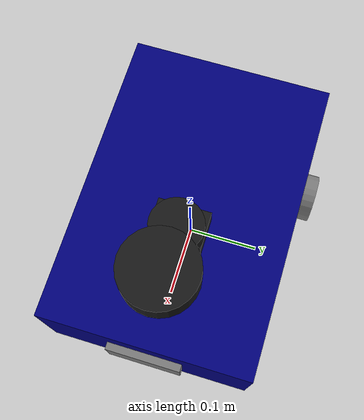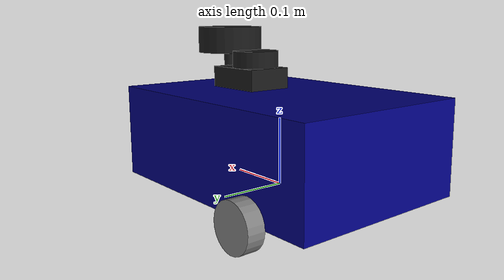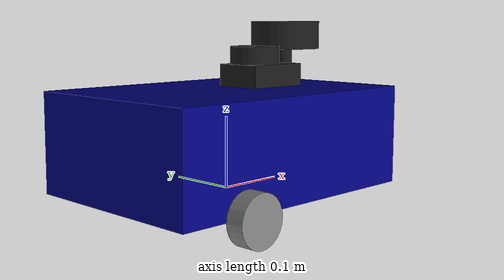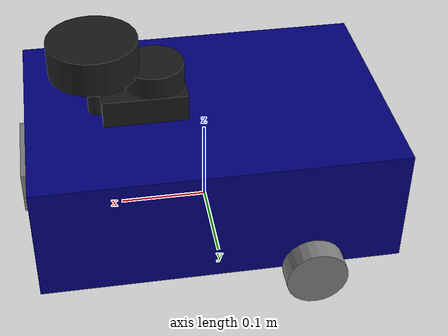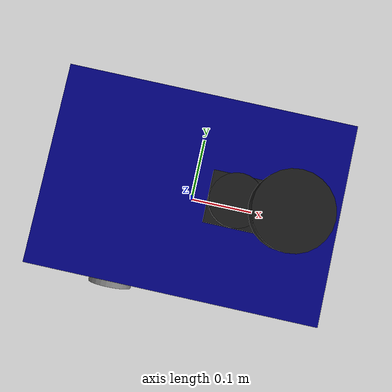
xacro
<?xml version="1.0"?>
<robot name="my_robot" xmlns:xacro="http://www.ros.org/wiki/xacro">

    <xacro:include filename="common_properties.xacro" />
    <xacro:include filename="inertial_macros.xacro"/>
    <xacro:include filename="mobile_base.xacro" />
    <xacro:include filename="ros2_control.xacro"/>
    <xacro:include filename="camera.xacro"/>
    <xacro:include filename="lidar.xacro"/>

</robot>

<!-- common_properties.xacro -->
<!-- still need to indicate xml -->
<robot xmlns:xacro="http://www.ros.org/wiki/xacro"> <!-- omit robot name (allowing us to insert into any robot) -->

    <material name="blue">
        <color rgba="0 0 0.5 1" />
    </material>

    <material name="grey">
        <color rgba="0.5 0.5 0.5 1" />
    </material>

    <material name="black">
        <color rgba="0.1 0.1 0.1 1" />
    </material>

    <xacro:macro name="box_inertia" params="m l w h xyz rpy">
        <inertial>
            <origin xyz="${xyz}" rpy="${rpy}" />
            <mass value="${m}" />
            <inertia ixx="${(m/12) * (h*h + l*l)}" ixy="0" ixz="0"
                        iyy="${(m/12) * (w*w + l*l)}" iyz="0"
                        izz="${(m/12) * (w*w + h*h)}" />
        </inertial>
    </xacro:macro>

    <xacro:macro name="cylinder_inertia" params="m r h xyz rpy">
        <inertial>
            <origin xyz="${xyz}" rpy="${rpy}" />
            <mass value="${m}" />
            <inertia ixx="${(m/12) * (3*r*r + h*h)}" ixy="0" ixz="0"
                        iyy="${(m/12) * (3*r*r + h*h)}" iyz="0"
                        izz="${(m/2) * (r*r)}" />
        </inertial>
    </xacro:macro>

    <xacro:macro name="sphere_inertia" params="m r xyz rpy">
        <inertial>
            <origin xyz="${xyz}" rpy="${rpy}" />
            <mass value="${m}" />
            <inertia ixx="${(2/5) * m * r * r}" ixy="0" ixz="0"
                        iyy="${(2/5) * m * r * r}" iyz="0"
                        izz="${(2/5) * m * r * r}" />
        </inertial>
    </xacro:macro>
</robot>

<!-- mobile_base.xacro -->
<robot name="my_robot" xmlns:xacro="http://www.ros.org/wiki/xacro">
    <xacro:property name="base_length" value="0.4064" />
    <xacro:property name="base_width" value="0.2794" />
    <xacro:property name="base_height" value="0.1397" />
    <xacro:property name="base_mass" value="1.4" />
    <xacro:property name="wheel_radius" value="0.034925" />
    <xacro:property name="wheel_length" value="0.0254" />
    <xacro:property name="wheel_mass" value="0.03" />
    <xacro:property name="lidar_stand_length" value="0.09525" />
    <xacro:property name="lidar_stand_width" value="0.06985" />
    <xacro:property name="lidar_stand_height" value="0.03175" />
    <xacro:property name="lidar_stand_mass" value="0.06" />
    <xacro:property name="lidar_length" value="0.0254" />
    <xacro:property name="lidar_radius" value="0.034925" />
    <xacro:property name="lidar_mass" value="0.12" />
    <xacro:property name="caster_mass" value="0.04" />

    <!--XARCROs FOR ARTICUBOT-->
    <xacro:macro name="lidar_stand_link">
        <link name="lidar_stand_link">
            <visual>
                <geometry>
                    <box size="${lidar_stand_length} ${lidar_stand_width} ${lidar_stand_height}" />
                </geometry>
                <origin xyz="0 0 ${lidar_stand_height/2.0}" rpy="0 0 0" />
                <material name="black" />
            </visual>
            <collision>
                <geometry>
                    <box size="${lidar_stand_length} ${lidar_stand_width} ${lidar_stand_height}" />
                </geometry>
                <origin xyz="0 0 ${lidar_stand_height/2.0}" rpy="0 0 0" />
            </collision>
            <xacro:box_inertia m="${lidar_stand_mass}" l="${lidar_stand_length}" w="${lidar_stand_width}" h="${lidar_stand_height}"
                           xyz="0 0 ${lidar_stand_height / 2.0}" rpy="0 0 0" />
        </link>
    </xacro:macro>

    <xacro:macro name="lidar_link">
        <link name="lidar_link">
            <visual>
                <geometry>
                    <cylinder radius="${lidar_radius}" length="${lidar_length}" />
                </geometry>
                <origin xyz="0 0 ${lidar_length/2.0}" rpy="0 0 0" />
                <material name="black" />
            </visual>
            <collision>
                <geometry>
                    <cylinder radius="${lidar_radius}" length="${lidar_length}" />
                </geometry>
                <origin xyz="0 0 ${lidar_length/2.0}" rpy="0 0 0" />
            </collision>
            <xacro:cylinder_inertia m="${lidar_mass}" r="${lidar_radius}" h="${lidar_length}"
                             xyz="0 0 0" rpy="0 0 0" />
        </link>
    </xacro:macro>

    <xacro:macro name="wheel_link" params="prefix">
        <link name="${prefix}_wheel_link">
            <visual>
                <geometry>
                    <cylinder radius="${wheel_radius}" length="${wheel_length}" />
                </geometry>
                <origin xyz="0 0 0" rpy="${pi / 2.0} 0 0" />
                <material name="grey" />
            </visual>
            <collision>
                <geometry>
                    <cylinder radius="${wheel_radius}" length="${wheel_length}" />
                </geometry>
                <origin xyz="0 0 0" rpy="${pi / 2.0} 0 0" />
            </collision>
            <xacro:cylinder_inertia m="${wheel_mass}" r="${wheel_radius}" h="${wheel_length}"
                             xyz="0 0 0" rpy="${pi / 2.0} 0 0" />
        </link>
    </xacro:macro>

    <xacro:macro name="chassis">
        <link name="chassis">
            <visual>
                <geometry>
                    <box size="${base_length} ${base_width} ${base_height}" />
                </geometry>
                <origin xyz="0 0 ${base_height/2.0}" rpy="0 0 0" />
                <material name="blue" />
            </visual>
            <collision>
                <geometry>
                    <box size="${base_length} ${base_width} ${base_height}" />
                </geometry>
                <origin xyz="0 0 ${base_height/2.0}" rpy="0 0 0" />
            </collision>
            <xacro:box_inertia m="${base_mass}" l="${base_length}" w="${base_width}" h="${base_height}"
                           xyz="0 0 ${base_height / 2.0}" rpy="0 0 0" />
        </link>
    </xacro:macro>

    <xacro:macro name="caster_wheel_link">
        <link name="caster_wheel_link">
            <visual>
                <geometry>
                    <sphere radius="${wheel_radius/2.0}" />
                </geometry>
                <origin xyz="0 0 0" rpy="0 0 0" />
                <material name="grey" />
            </visual>
            <collision>
                <geometry>
                    <sphere radius="${wheel_radius/2.0}" />
                </geometry>
                <origin xyz="0 0 0" rpy="0 0 0" />
            </collision>
            <xacro:sphere_inertia m="${caster_mass}" r="${wheel_radius / 2.0}"
                            xyz="0 0 0" rpy="0 0 0" />
        </link>
    </xacro:macro>

    <!--INSTANCES OF XACROs-->
    <xacro:chassis/>
    <xacro:caster_wheel_link/>
    <xacro:wheel_link prefix="right" />
    <xacro:wheel_link prefix="left" />
    <xacro:lidar_stand_link />
    <xacro:lidar_link />

    <link name="base_link" />
    <link name="base_footprint" />

    <joint name="base_footprint_joint" type="fixed">
        <parent link="base_link"/>
        <child link="base_footprint"/>
        <origin xyz="0 0 0" rpy="0 0 0"/>
    </joint>

    <joint name="chassis_joint" type="fixed">
        <parent link="base_link" />
        <child link="chassis" />
        <origin xyz="0 0 0" rpy="0 0 0"/>
    </joint>

    <joint name="base_right_wheel_joint" type="continuous">
        <parent link="chassis" />
        <child link="right_wheel_link" />
        <origin xyz="${-base_length / 4.0} ${-(base_width + wheel_length) / 2.0} 0" rpy="0 0 0" />
        <axis xyz="0 1 0" />
    </joint>

    <joint name="base_left_wheel_joint" type="continuous">
        <parent link="chassis" />
        <child link="left_wheel_link" />
        <origin xyz="${-base_length / 4.0} ${(base_width + wheel_length) / 2.0} 0" rpy="0 0 0" />
        <axis xyz="0 1 0" />
    </joint>

    <joint name="base_caster_wheel_joint" type="fixed">
        <parent link="chassis" />
        <child link="caster_wheel_link" />
        <origin xyz="${base_length / 3.0} 0 ${-wheel_radius / 2.0}" rpy="0 0 0" />
    </joint>

    <joint name="base_lidar_stand_joint" type="fixed">
        <parent link="chassis" />
        <child link="lidar_stand_link" />
        <origin xyz="${base_height/2.0} 0 ${base_height}" rpy="0 0 0" />
    </joint>

    <joint name="lidar_stand_lidar_joint" type="fixed">
        <parent link="lidar_stand_link" />
        <child link="lidar_link" />
        <origin xyz="${-1.0*((lidar_stand_length/2.0)-lidar_radius)} 0 ${lidar_stand_height}" rpy="0 0 0" />
        <axis xyz="0 0 1" />
    </joint>
</robot>

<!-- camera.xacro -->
<robot xmlns:xacro="http://www.ros.org/wiki/xacro">

    <xacro:property name="camera_length" value="0.01" />
    <xacro:property name="camera_width" value="0.1" />
    <xacro:property name="camera_height" value="0.05" />

    <link name="camera_link">
        <visual>
            <geometry>
                <box size="${camera_length} ${camera_width} ${camera_height}" />
            </geometry>
            <material name="grey" />
        </visual>
        <collision>
            <geometry>
                <box size="${camera_length} ${camera_width} ${camera_height}" />
            </geometry>
        </collision>
        <xacro:box_inertia m="0.1" l="${camera_length}" w="${camera_width}" h="${camera_height}"
                           xyz="0 0 0" rpy="0 0 0" />
    </link>

    <joint name="base_camera_joint" type="fixed">
        <parent link="base_link" />
        <child link="camera_link" />
        <origin xyz="${(base_length + camera_length) / 2.0} 0 ${base_height / 2.0}" rpy="0 0 0" />
    </joint>

    <link name="camera_link_optical">
    </link>

    <joint name="camera_optical_joint" type="fixed">
        <!-- these values have to be these values otherwise the gazebo camera
            image won't be aligned properly with the frame it is supposedly
            originating from -->
        <origin xyz="0 0 0" rpy="0 0 0"/>
        <parent link="camera_link"/>
        <child link="camera_link_optical"/>
    </joint>

    <gazebo reference="camera_link_optical">
       <sensor name="camera" type="camera">
          <camera>
            <horizontal_fov>1.047</horizontal_fov>
            <image>
              <width>320</width>
              <height>240</height>
            </image>
            <clip>
              <near>0.1</near>
              <far>100</far>
            </clip>
          </camera>
         <always_on>1</always_on>
         <update_rate>30</update_rate>
         <visualize>true</visualize>
         <topic>camera</topic>
        </sensor>
    </gazebo>
</robot>

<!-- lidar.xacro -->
<robot xmlns:xacro="http://www.ros.org/wiki/xacro" >

    <joint name="laser_joint" type="fixed">
        <parent link="chassis"/>
        <child link="laser_frame"/>
        <origin xyz="0.122 0 0.212" rpy="0 0 0"/>
    </joint>

    <link name="laser_frame">
        <visual>
            <geometry>
                <cylinder radius="0.05" length="0.04"/>
            </geometry>
            <material name="black"/>
        </visual>
        <visual>
            <origin xyz="0 0 -0.05"/>
            <geometry>
                <cylinder radius="0.01" length="0.1"/>
            </geometry>
            <material name="black"/>
        </visual>
        <collision>
            <geometry>
                <cylinder radius="0.05" length="0.04"/>
            </geometry>
        </collision>
        <xacro:inertial_cylinder mass="0.1" length="0.04" radius="0.05">
            <origin xyz="0 0 0" rpy="0 0 0"/>
        </xacro:inertial_cylinder>
    </link>

    <gazebo reference="laser_frame">
        <material>Gazebo/Black</material>

        <sensor name="laser" type="gpu_lidar">
            <pose> 0 0 0 0 0 0 </pose>
            <visualize>false</visualize>
            <update_rate>10</update_rate>
            <lidar>
                <scan>
                    <horizontal>
                        <samples>360</samples>
                        <min_angle>-3.14</min_angle>
                        <max_angle>3.14</max_angle>
                    </horizontal>
                </scan>
                <range>
                    <min>0.3</min>
                    <max>12</max>
                </range>
            </lidar>
            <topic>
                /scan
            </topic>
            <gz_frame_id>laser_frame</gz_frame_id>
        </sensor>
    </gazebo>

</robot>
